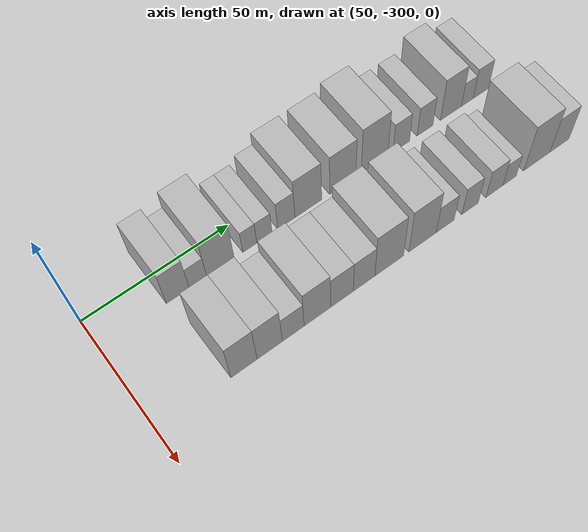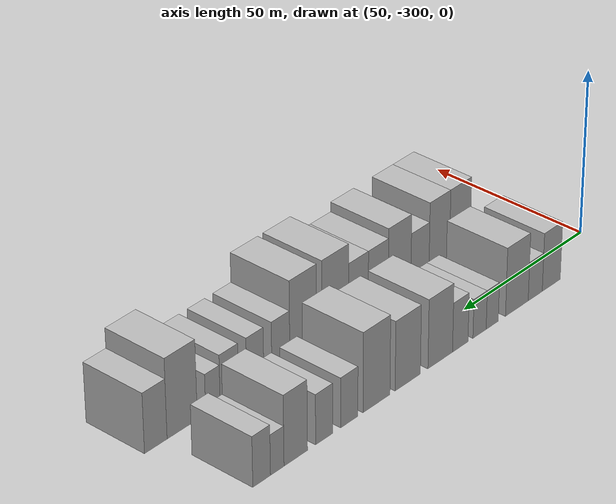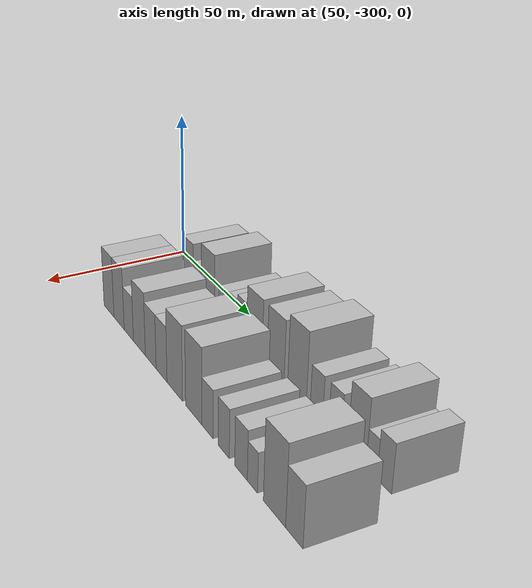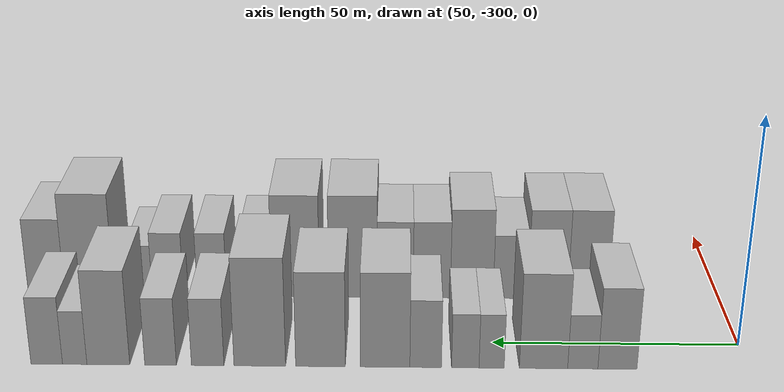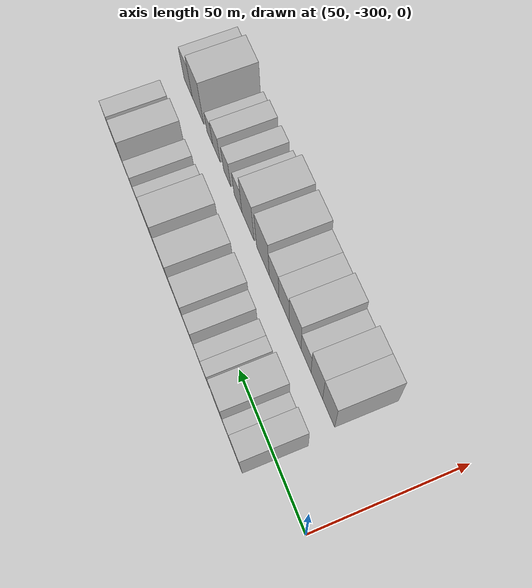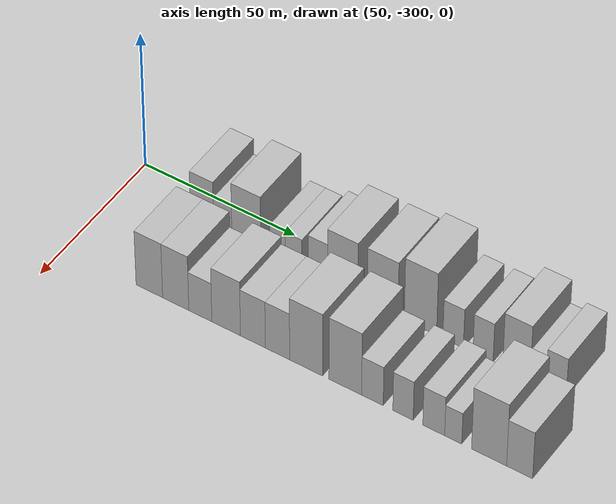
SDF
<sdf version="1.6">
 <world name="default">
  <model name="building_1">
   <static>1</static>
   <pose>50.0000 -274.1434 0 0.000000 0.000000 0.000000</pose>
   <link name="link">
    <pose>0 0 9.00 0 0 0</pose>
    <collision name="collision"><geometry><box><size>20.0000 7.7133 18.0000</size></box></geometry></collision>
    <visual name="visual">
     <cast_shadows>0</cast_shadows>
     <geometry><box><size>20.0000 7.7133 18.0000</size></box></geometry>
     <material>
      <script>
       <uri>model://HANNAS_wall/materials/scripts</uri>
       <uri>model://HANNAS_wall/materials/textures</uri>
       <name>vrc/HANNAS_wall</name>
      </script>
     </material>
    </visual>
   </link>
  </model>
  <model name="building_2">
   <static>1</static>
   <pose>50.0000 -267.2990 0 0.000000 0.000000 0.000000</pose>
   <link name="link">
    <pose>0 0 6.00 0 0 0</pose>
    <collision name="collision"><geometry><box><size>20.0000 5.9753 12.0000</size></box></geometry></collision>
    <visual name="visual">
     <cast_shadows>0</cast_shadows>
     <geometry><box><size>20.0000 5.9753 12.0000</size></box></geometry>
     <material>
      <script>
       <uri>model://HANNAS_wall/materials/scripts</uri>
       <uri>model://HANNAS_wall/materials/textures</uri>
       <name>vrc/HANNAS_wall</name>
      </script>
     </material>
    </visual>
   </link>
  </model>
  <model name="building_3">
   <static>1</static>
   <pose>50.0000 -259.5377 0 0.000000 0.000000 0.000000</pose>
   <link name="link">
    <pose>0 0 10.50 0 0 0</pose>
    <collision name="collision"><geometry><box><size>20.0000 9.5473 21.0000</size></box></geometry></collision>
    <visual name="visual">
     <cast_shadows>0</cast_shadows>
     <geometry><box><size>20.0000 9.5473 21.0000</size></box></geometry>
     <material>
      <script>
       <uri>model://HANNAS_wall/materials/scripts</uri>
       <uri>model://HANNAS_wall/materials/textures</uri>
       <name>vrc/HANNAS_wall</name>
      </script>
     </material>
    </visual>
   </link>
  </model>
  <model name="building_4">
   <static>1</static>
   <pose>50.0000 -249.2695 0 0.000000 0.000000 0.000000</pose>
   <link name="link">
    <pose>0 0 6.00 0 0 0</pose>
    <collision name="collision"><geometry><box><size>20.0000 4.9893 12.0000</size></box></geometry></collision>
    <visual name="visual">
     <cast_shadows>0</cast_shadows>
     <geometry><box><size>20.0000 4.9893 12.0000</size></box></geometry>
     <material>
      <script>
       <uri>model://HANNAS_wall/materials/scripts</uri>
       <uri>model://HANNAS_wall/materials/textures</uri>
       <name>vrc/HANNAS_wall</name>
      </script>
     </material>
    </visual>
   </link>
  </model>
  <model name="building_5">
   <static>1</static>
   <pose>50.0000 -244.0601 0 0.000000 0.000000 0.000000</pose>
   <link name="link">
    <pose>0 0 6.00 0 0 0</pose>
    <collision name="collision"><geometry><box><size>20.0000 5.4295 12.0000</size></box></geometry></collision>
    <visual name="visual">
     <cast_shadows>0</cast_shadows>
     <geometry><box><size>20.0000 5.4295 12.0000</size></box></geometry>
     <material>
      <script>
       <uri>model://HANNAS_wall/materials/scripts</uri>
       <uri>model://HANNAS_wall/materials/textures</uri>
       <name>vrc/HANNAS_wall</name>
      </script>
     </material>
    </visual>
   </link>
  </model>
  <model name="building_6">
   <static>1</static>
   <pose>50.0000 -236.2115 0 0.000000 0.000000 0.000000</pose>
   <link name="link">
    <pose>0 0 7.50 0 0 0</pose>
    <collision name="collision"><geometry><box><size>20.0000 6.2675 15.0000</size></box></geometry></collision>
    <visual name="visual">
     <cast_shadows>0</cast_shadows>
     <geometry><box><size>20.0000 6.2675 15.0000</size></box></geometry>
     <material>
      <script>
       <uri>model://HANNAS_wall/materials/scripts</uri>
       <uri>model://HANNAS_wall/materials/textures</uri>
       <name>vrc/HANNAS_wall</name>
      </script>
     </material>
    </visual>
   </link>
  </model>
  <model name="building_7">
   <static>1</static>
   <pose>50.0000 -228.1773 0 0.000000 0.000000 0.000000</pose>
   <link name="link">
    <pose>0 0 10.50 0 0 0</pose>
    <collision name="collision"><geometry><box><size>20.0000 9.8010 21.0000</size></box></geometry></collision>
    <visual name="visual">
     <cast_shadows>0</cast_shadows>
     <geometry><box><size>20.0000 9.8010 21.0000</size></box></geometry>
     <material>
      <script>
       <uri>model://HANNAS_wall/materials/scripts</uri>
       <uri>model://HANNAS_wall/materials/textures</uri>
       <name>vrc/HANNAS_wall</name>
      </script>
     </material>
    </visual>
   </link>
  </model>
  <model name="building_8">
   <static>1</static>
   <pose>50.0000 -215.3446 0 0.000000 0.000000 0.000000</pose>
   <link name="link">
    <pose>0 0 10.50 0 0 0</pose>
    <collision name="collision"><geometry><box><size>20.0000 9.8645 21.0000</size></box></geometry></collision>
    <visual name="visual">
     <cast_shadows>0</cast_shadows>
     <geometry><box><size>20.0000 9.8645 21.0000</size></box></geometry>
     <material>
      <script>
       <uri>model://HANNAS_wall/materials/scripts</uri>
       <uri>model://HANNAS_wall/materials/textures</uri>
       <name>vrc/HANNAS_wall</name>
      </script>
     </material>
    </visual>
   </link>
  </model>
  <model name="building_9">
   <static>1</static>
   <pose>50.0000 -203.2781 0 0.000000 0.000000 0.000000</pose>
   <link name="link">
    <pose>0 0 12.00 0 0 0</pose>
    <collision name="collision"><geometry><box><size>20.0000 10.2684 24.0000</size></box></geometry></collision>
    <visual name="visual">
     <cast_shadows>0</cast_shadows>
     <geometry><box><size>20.0000 10.2684 24.0000</size></box></geometry>
     <material>
      <script>
       <uri>model://HANNAS_wall/materials/scripts</uri>
       <uri>model://HANNAS_wall/materials/textures</uri>
       <name>vrc/HANNAS_wall</name>
      </script>
     </material>
    </visual>
   </link>
  </model>
  <model name="building_10">
   <static>1</static>
   <pose>50.0000 -192.9101 0 0.000000 0.000000 0.000000</pose>
   <link name="link">
    <pose>0 0 7.50 0 0 0</pose>
    <collision name="collision"><geometry><box><size>20.0000 6.4676 15.0000</size></box></geometry></collision>
    <visual name="visual">
     <cast_shadows>0</cast_shadows>
     <geometry><box><size>20.0000 6.4676 15.0000</size></box></geometry>
     <material>
      <script>
       <uri>model://HANNAS_wall/materials/scripts</uri>
       <uri>model://HANNAS_wall/materials/textures</uri>
       <name>vrc/HANNAS_wall</name>
      </script>
     </material>
    </visual>
   </link>
  </model>
  <model name="building_11">
   <static>1</static>
   <pose>50.0000 -183.5272 0 0.000000 0.000000 0.000000</pose>
   <link name="link">
    <pose>0 0 7.50 0 0 0</pose>
    <collision name="collision"><geometry><box><size>20.0000 6.2981 15.0000</size></box></geometry></collision>
    <visual name="visual">
     <cast_shadows>0</cast_shadows>
     <geometry><box><size>20.0000 6.2981 15.0000</size></box></geometry>
     <material>
      <script>
       <uri>model://HANNAS_wall/materials/scripts</uri>
       <uri>model://HANNAS_wall/materials/textures</uri>
       <name>vrc/HANNAS_wall</name>
      </script>
     </material>
    </visual>
   </link>
  </model>
  <model name="building_12">
   <static>1</static>
   <pose>50.0000 -173.1050 0 0.000000 0.000000 0.000000</pose>
   <link name="link">
    <pose>0 0 10.50 0 0 0</pose>
    <collision name="collision"><geometry><box><size>20.0000 8.5462 21.0000</size></box></geometry></collision>
    <visual name="visual">
     <cast_shadows>0</cast_shadows>
     <geometry><box><size>20.0000 8.5462 21.0000</size></box></geometry>
     <material>
      <script>
       <uri>model://HANNAS_wall/materials/scripts</uri>
       <uri>model://HANNAS_wall/materials/textures</uri>
       <name>vrc/HANNAS_wall</name>
      </script>
     </material>
    </visual>
   </link>
  </model>
  <model name="building_13">
   <static>1</static>
   <pose>50.0000 -166.3974 0 0.000000 0.000000 0.000000</pose>
   <link name="link">
    <pose>0 0 6.00 0 0 0</pose>
    <collision name="collision"><geometry><box><size>20.0000 4.8691 12.0000</size></box></geometry></collision>
    <visual name="visual">
     <cast_shadows>0</cast_shadows>
     <geometry><box><size>20.0000 4.8691 12.0000</size></box></geometry>
     <material>
      <script>
       <uri>model://HANNAS_wall/materials/scripts</uri>
       <uri>model://HANNAS_wall/materials/textures</uri>
       <name>vrc/HANNAS_wall</name>
      </script>
     </material>
    </visual>
   </link>
  </model>
  <model name="building_14">
   <static>1</static>
   <pose>50.0000 -160.8092 0 0.000000 0.000000 0.000000</pose>
   <link name="link">
    <pose>0 0 7.50 0 0 0</pose>
    <collision name="collision"><geometry><box><size>20.0000 6.3073 15.0000</size></box></geometry></collision>
    <visual name="visual">
     <cast_shadows>0</cast_shadows>
     <geometry><box><size>20.0000 6.3073 15.0000</size></box></geometry>
     <material>
      <script>
       <uri>model://HANNAS_wall/materials/scripts</uri>
       <uri>model://HANNAS_wall/materials/textures</uri>
       <name>vrc/HANNAS_wall</name>
      </script>
     </material>
    </visual>
   </link>
  </model>
  <model name="building_61">
   <static>1</static>
   <pose>79.0000 -271.6310 0 0.000000 0.000000 0.000000</pose>
   <link name="link">
    <pose>0 0 10.50 0 0 0</pose>
    <collision name="collision"><geometry><box><size>20.0000 8.7380 21.0000</size></box></geometry></collision>
    <visual name="visual">
     <cast_shadows>0</cast_shadows>
     <geometry><box><size>20.0000 8.7380 21.0000</size></box></geometry>
     <material>
      <script>
       <uri>model://HANNAS_wall/materials/scripts</uri>
       <uri>model://HANNAS_wall/materials/textures</uri>
       <name>vrc/HANNAS_wall</name>
      </script>
     </material>
    </visual>
   </link>
  </model>
  <model name="building_62">
   <static>1</static>
   <pose>79.0000 -262.9829 0 0.000000 0.000000 0.000000</pose>
   <link name="link">
    <pose>0 0 10.50 0 0 0</pose>
    <collision name="collision"><geometry><box><size>20.0000 8.5583 21.0000</size></box></geometry></collision>
    <visual name="visual">
     <cast_shadows>0</cast_shadows>
     <geometry><box><size>20.0000 8.5583 21.0000</size></box></geometry>
     <material>
      <script>
       <uri>model://HANNAS_wall/materials/scripts</uri>
       <uri>model://HANNAS_wall/materials/textures</uri>
       <name>vrc/HANNAS_wall</name>
      </script>
     </material>
    </visual>
   </link>
  </model>
  <model name="building_63">
   <static>1</static>
   <pose>79.0000 -254.9551 0 0.000000 0.000000 0.000000</pose>
   <link name="link">
    <pose>0 0 7.50 0 0 0</pose>
    <collision name="collision"><geometry><box><size>20.0000 7.4973 15.0000</size></box></geometry></collision>
    <visual name="visual">
     <cast_shadows>0</cast_shadows>
     <geometry><box><size>20.0000 7.4973 15.0000</size></box></geometry>
     <material>
      <script>
       <uri>model://HANNAS_wall/materials/scripts</uri>
       <uri>model://HANNAS_wall/materials/textures</uri>
       <name>vrc/HANNAS_wall</name>
      </script>
     </material>
    </visual>
   </link>
  </model>
  <model name="building_64">
   <static>1</static>
   <pose>79.0000 -246.5809 0 0.000000 0.000000 0.000000</pose>
   <link name="link">
    <pose>0 0 10.50 0 0 0</pose>
    <collision name="collision"><geometry><box><size>20.0000 9.2510 21.0000</size></box></geometry></collision>
    <visual name="visual">
     <cast_shadows>0</cast_shadows>
     <geometry><box><size>20.0000 9.2510 21.0000</size></box></geometry>
     <material>
      <script>
       <uri>model://HANNAS_wall/materials/scripts</uri>
       <uri>model://HANNAS_wall/materials/textures</uri>
       <name>vrc/HANNAS_wall</name>
      </script>
     </material>
    </visual>
   </link>
  </model>
  <model name="building_65">
   <static>1</static>
   <pose>79.0000 -237.9402 0 0.000000 0.000000 0.000000</pose>
   <link name="link">
    <pose>0 0 9.00 0 0 0</pose>
    <collision name="collision"><geometry><box><size>20.0000 8.0304 18.0000</size></box></geometry></collision>
    <visual name="visual">
     <cast_shadows>0</cast_shadows>
     <geometry><box><size>20.0000 8.0304 18.0000</size></box></geometry>
     <material>
      <script>
       <uri>model://HANNAS_wall/materials/scripts</uri>
       <uri>model://HANNAS_wall/materials/textures</uri>
       <name>vrc/HANNAS_wall</name>
      </script>
     </material>
    </visual>
   </link>
  </model>
  <model name="building_66">
   <static>1</static>
   <pose>79.0000 -230.0415 0 0.000000 0.000000 0.000000</pose>
   <link name="link">
    <pose>0 0 9.00 0 0 0</pose>
    <collision name="collision"><geometry><box><size>20.0000 7.7669 18.0000</size></box></geometry></collision>
    <visual name="visual">
     <cast_shadows>0</cast_shadows>
     <geometry><box><size>20.0000 7.7669 18.0000</size></box></geometry>
     <material>
      <script>
       <uri>model://HANNAS_wall/materials/scripts</uri>
       <uri>model://HANNAS_wall/materials/textures</uri>
       <name>vrc/HANNAS_wall</name>
      </script>
     </material>
    </visual>
   </link>
  </model>
  <model name="building_67">
   <static>1</static>
   <pose>79.0000 -220.9035 0 0.000000 0.000000 0.000000</pose>
   <link name="link">
    <pose>0 0 12.00 0 0 0</pose>
    <collision name="collision"><geometry><box><size>20.0000 10.5091 24.0000</size></box></geometry></collision>
    <visual name="visual">
     <cast_shadows>0</cast_shadows>
     <geometry><box><size>20.0000 10.5091 24.0000</size></box></geometry>
     <material>
      <script>
       <uri>model://HANNAS_wall/materials/scripts</uri>
       <uri>model://HANNAS_wall/materials/textures</uri>
       <name>vrc/HANNAS_wall</name>
      </script>
     </material>
    </visual>
   </link>
  </model>
  <model name="building_68">
   <static>1</static>
   <pose>79.0000 -208.5019 0 0.000000 0.000000 0.000000</pose>
   <link name="link">
    <pose>0 0 12.00 0 0 0</pose>
    <collision name="collision"><geometry><box><size>20.0000 10.2941 24.0000</size></box></geometry></collision>
    <visual name="visual">
     <cast_shadows>0</cast_shadows>
     <geometry><box><size>20.0000 10.2941 24.0000</size></box></geometry>
     <material>
      <script>
       <uri>model://HANNAS_wall/materials/scripts</uri>
       <uri>model://HANNAS_wall/materials/textures</uri>
       <name>vrc/HANNAS_wall</name>
      </script>
     </material>
    </visual>
   </link>
  </model>
  <model name="building_69">
   <static>1</static>
   <pose>79.0000 -199.9437 0 0.000000 0.000000 0.000000</pose>
   <link name="link">
    <pose>0 0 7.50 0 0 0</pose>
    <collision name="collision"><geometry><box><size>20.0000 6.8224 15.0000</size></box></geometry></collision>
    <visual name="visual">
     <cast_shadows>0</cast_shadows>
     <geometry><box><size>20.0000 6.8224 15.0000</size></box></geometry>
     <material>
      <script>
       <uri>model://HANNAS_wall/materials/scripts</uri>
       <uri>model://HANNAS_wall/materials/textures</uri>
       <name>vrc/HANNAS_wall</name>
      </script>
     </material>
    </visual>
   </link>
  </model>
  <model name="building_70">
   <static>1</static>
   <pose>79.0000 -190.3543 0 0.000000 0.000000 0.000000</pose>
   <link name="link">
    <pose>0 0 7.50 0 0 0</pose>
    <collision name="collision"><geometry><box><size>20.0000 6.3563 15.0000</size></box></geometry></collision>
    <visual name="visual">
     <cast_shadows>0</cast_shadows>
     <geometry><box><size>20.0000 6.3563 15.0000</size></box></geometry>
     <material>
      <script>
       <uri>model://HANNAS_wall/materials/scripts</uri>
       <uri>model://HANNAS_wall/materials/textures</uri>
       <name>vrc/HANNAS_wall</name>
      </script>
     </material>
    </visual>
   </link>
  </model>
  <model name="building_71">
   <static>1</static>
   <pose>79.0000 -180.7851 0 0.000000 0.000000 0.000000</pose>
   <link name="link">
    <pose>0 0 7.50 0 0 0</pose>
    <collision name="collision"><geometry><box><size>20.0000 6.7821 15.0000</size></box></geometry></collision>
    <visual name="visual">
     <cast_shadows>0</cast_shadows>
     <geometry><box><size>20.0000 6.7821 15.0000</size></box></geometry>
     <material>
      <script>
       <uri>model://HANNAS_wall/materials/scripts</uri>
       <uri>model://HANNAS_wall/materials/textures</uri>
       <name>vrc/HANNAS_wall</name>
      </script>
     </material>
    </visual>
   </link>
  </model>
  <model name="building_72">
   <static>1</static>
   <pose>79.0000 -174.7479 0 0.000000 0.000000 0.000000</pose>
   <link name="link">
    <pose>0 0 6.00 0 0 0</pose>
    <collision name="collision"><geometry><box><size>20.0000 5.2924 12.0000</size></box></geometry></collision>
    <visual name="visual">
     <cast_shadows>0</cast_shadows>
     <geometry><box><size>20.0000 5.2924 12.0000</size></box></geometry>
     <material>
      <script>
       <uri>model://HANNAS_wall/materials/scripts</uri>
       <uri>model://HANNAS_wall/materials/textures</uri>
       <name>vrc/HANNAS_wall</name>
      </script>
     </material>
    </visual>
   </link>
  </model>
  <model name="building_73">
   <static>1</static>
   <pose>79.0000 -163.7200 0 0.000000 0.000000 0.000000</pose>
   <link name="link">
    <pose>0 0 12.00 0 0 0</pose>
    <collision name="collision"><geometry><box><size>20.0000 10.7635 24.0000</size></box></geometry></collision>
    <visual name="visual">
     <cast_shadows>0</cast_shadows>
     <geometry><box><size>20.0000 10.7635 24.0000</size></box></geometry>
     <material>
      <script>
       <uri>model://HANNAS_wall/materials/scripts</uri>
       <uri>model://HANNAS_wall/materials/textures</uri>
       <name>vrc/HANNAS_wall</name>
      </script>
     </material>
    </visual>
   </link>
  </model>
  <model name="building_74">
   <static>1</static>
   <pose>79.0000 -154.3717 0 0.000000 0.000000 0.000000</pose>
   <link name="link">
    <pose>0 0 9.00 0 0 0</pose>
    <collision name="collision"><geometry><box><size>20.0000 7.9330 18.0000</size></box></geometry></collision>
    <visual name="visual">
     <cast_shadows>0</cast_shadows>
     <geometry><box><size>20.0000 7.9330 18.0000</size></box></geometry>
     <material>
      <script>
       <uri>model://HANNAS_wall/materials/scripts</uri>
       <uri>model://HANNAS_wall/materials/textures</uri>
       <name>vrc/HANNAS_wall</name>
      </script>
     </material>
    </visual>
   </link>
  </model>
 </world>
</sdf>
